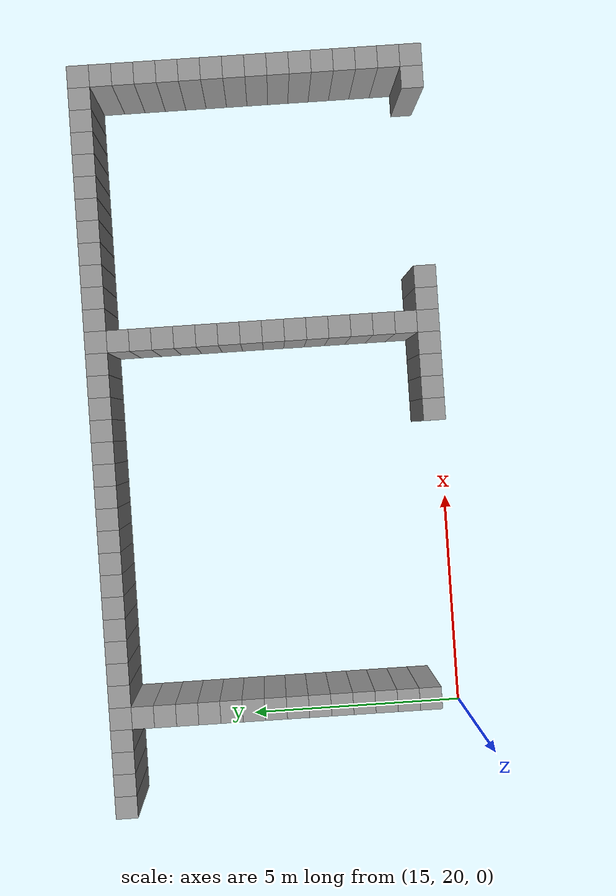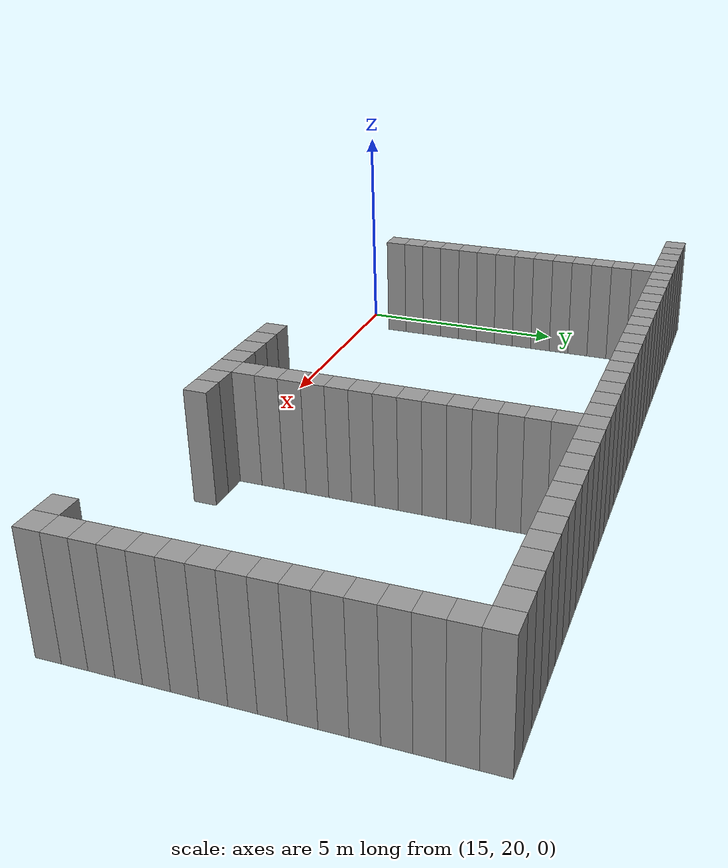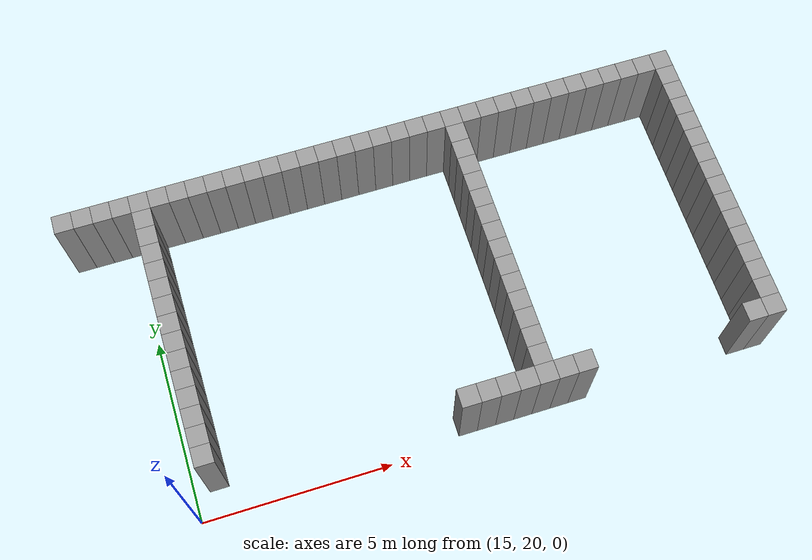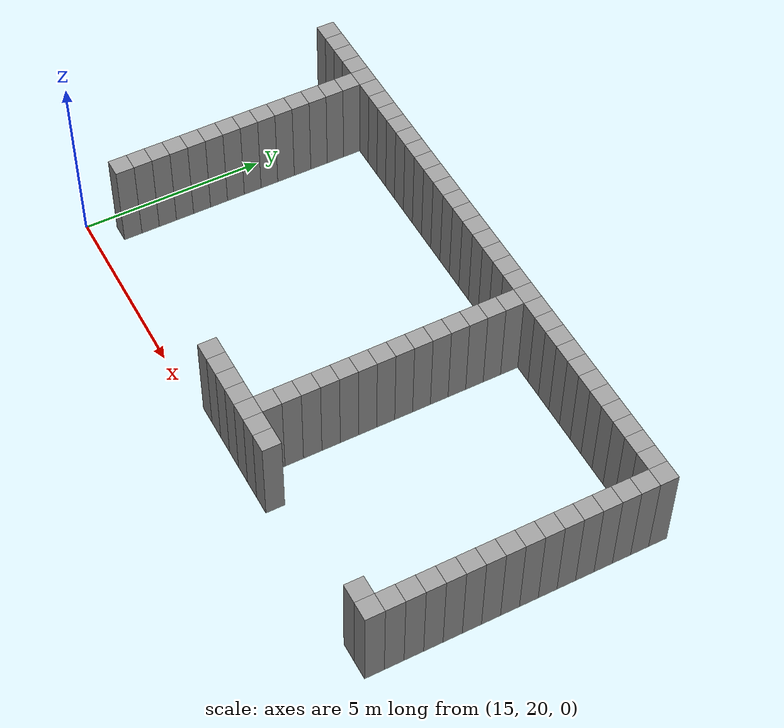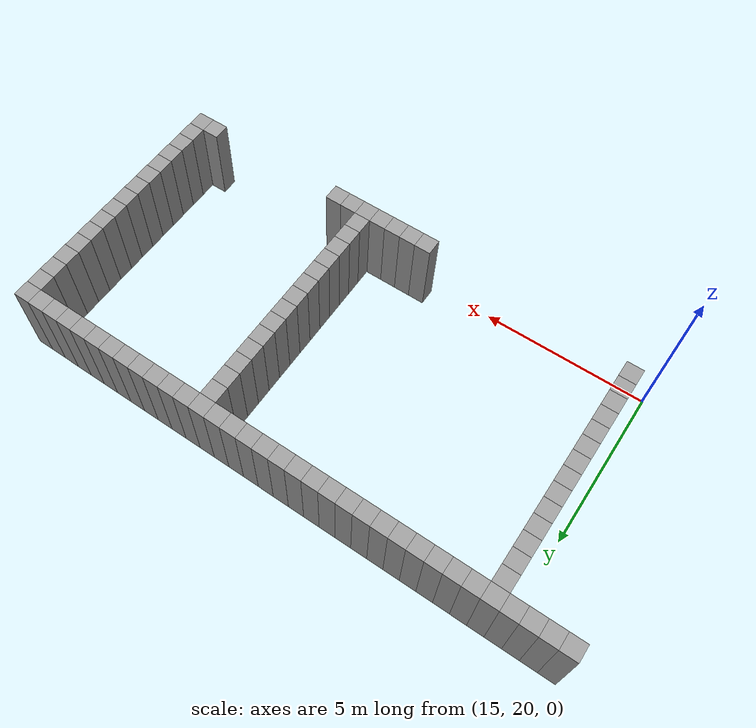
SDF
<sdf version="1.7">
 <model name="image1">
  <pose>-0.375 -1.54 0 0 -0 0</pose>
  <link name="Wall_255">
   <collision name="Wall_255_Collision">
    <geometry><box><size>0.5 0.5 2.5</size></box></geometry>
    <pose>0 0 1.25 0 -0 0</pose>
   </collision>
   <visual name="Wall_255_Visual">
    <pose>0 0 1.25 0 -0 0</pose>
    <geometry><box><size>0.5 0.5 2.5</size></box></geometry>
    <material>
     <script><uri>file://media/materials/scripts/gazebo.material</uri><name>Gazebo/Grey</name></script>
     <ambient>1 1 1 1</ambient>
    </material>
    <meta><layer>0</layer></meta>
   </visual>
   <pose>14.0 29.5 0 0 -0 0</pose>
  </link>
  <link name="Wall_258">
   <collision name="Wall_258_Collision">
    <geometry><box><size>0.5 0.5 2.5</size></box></geometry>
    <pose>0 0 1.25 0 -0 0</pose>
   </collision>
   <visual name="Wall_258_Visual">
    <pose>0 0 1.25 0 -0 0</pose>
    <geometry><box><size>0.5 0.5 2.5</size></box></geometry>
    <material>
     <script><uri>file://media/materials/scripts/gazebo.material</uri><name>Gazebo/Grey</name></script>
     <ambient>1 1 1 1</ambient>
    </material>
    <meta><layer>0</layer></meta>
   </visual>
   <pose>14.5 29.5 0 0 -0 0</pose>
  </link>
  <link name="Wall_261">
   <collision name="Wall_261_Collision">
    <geometry><box><size>0.5 0.5 2.5</size></box></geometry>
    <pose>0 0 1.25 0 -0 0</pose>
   </collision>
   <visual name="Wall_261_Visual">
    <pose>0 0 1.25 0 -0 0</pose>
    <geometry><box><size>0.5 0.5 2.5</size></box></geometry>
    <material>
     <script><uri>file://media/materials/scripts/gazebo.material</uri><name>Gazebo/Grey</name></script>
     <ambient>1 1 1 1</ambient>
    </material>
    <meta><layer>0</layer></meta>
   </visual>
   <pose>15.0 29.5 0 0 -0 0</pose>
  </link>
  <link name="Wall_264">
   <collision name="Wall_264_Collision">
    <geometry><box><size>0.5 0.5 2.5</size></box></geometry>
    <pose>0 0 1.25 0 -0 0</pose>
   </collision>
   <visual name="Wall_264_Visual">
    <pose>0 0 1.25 0 -0 0</pose>
    <geometry><box><size>0.5 0.5 2.5</size></box></geometry>
    <material>
     <script><uri>file://media/materials/scripts/gazebo.material</uri><name>Gazebo/Grey</name></script>
     <ambient>1 1 1 1</ambient>
    </material>
    <meta><layer>0</layer></meta>
   </visual>
   <pose>15.5 29.5 0 0 -0 0</pose>
  </link>
  <link name="Wall_268">
   <collision name="Wall_268_Collision">
    <geometry><box><size>0.5 0.5 2.5</size></box></geometry>
    <pose>0 0 1.25 0 -0 0</pose>
   </collision>
   <visual name="Wall_268_Visual">
    <pose>0 0 1.25 0 -0 0</pose>
    <geometry><box><size>0.5 0.5 2.5</size></box></geometry>
    <material>
     <script><uri>file://media/materials/scripts/gazebo.material</uri><name>Gazebo/Grey</name></script>
     <ambient>1 1 1 1</ambient>
    </material>
    <meta><layer>0</layer></meta>
   </visual>
   <pose>16.0 22.5 0 0 -0 0</pose>
  </link>
  <link name="Wall_269">
   <collision name="Wall_269_Collision">
    <geometry><box><size>0.5 0.5 2.5</size></box></geometry>
    <pose>0 0 1.25 0 -0 0</pose>
   </collision>
   <visual name="Wall_269_Visual">
    <pose>0 0 1.25 0 -0 0</pose>
    <geometry><box><size>0.5 0.5 2.5</size></box></geometry>
    <material>
     <script><uri>file://media/materials/scripts/gazebo.material</uri><name>Gazebo/Grey</name></script>
     <ambient>1 1 1 1</ambient>
    </material>
    <meta><layer>0</layer></meta>
   </visual>
   <pose>16.0 23.0 0 0 -0 0</pose>
  </link>
  <link name="Wall_270">
   <collision name="Wall_270_Collision">
    <geometry><box><size>0.5 0.5 2.5</size></box></geometry>
    <pose>0 0 1.25 0 -0 0</pose>
   </collision>
   <visual name="Wall_270_Visual">
    <pose>0 0 1.25 0 -0 0</pose>
    <geometry><box><size>0.5 0.5 2.5</size></box></geometry>
    <material>
     <script><uri>file://media/materials/scripts/gazebo.material</uri><name>Gazebo/Grey</name></script>
     <ambient>1 1 1 1</ambient>
    </material>
    <meta><layer>0</layer></meta>
   </visual>
   <pose>16.0 23.5 0 0 -0 0</pose>
  </link>
  <link name="Wall_271">
   <collision name="Wall_271_Collision">
    <geometry><box><size>0.5 0.5 2.5</size></box></geometry>
    <pose>0 0 1.25 0 -0 0</pose>
   </collision>
   <visual name="Wall_271_Visual">
    <pose>0 0 1.25 0 -0 0</pose>
    <geometry><box><size>0.5 0.5 2.5</size></box></geometry>
    <material>
     <script><uri>file://media/materials/scripts/gazebo.material</uri><name>Gazebo/Grey</name></script>
     <ambient>1 1 1 1</ambient>
    </material>
    <meta><layer>0</layer></meta>
   </visual>
   <pose>16.0 24.0 0 0 -0 0</pose>
  </link>
  <link name="Wall_272">
   <collision name="Wall_272_Collision">
    <geometry><box><size>0.5 0.5 2.5</size></box></geometry>
    <pose>0 0 1.25 0 -0 0</pose>
   </collision>
   <visual name="Wall_272_Visual">
    <pose>0 0 1.25 0 -0 0</pose>
    <geometry><box><size>0.5 0.5 2.5</size></box></geometry>
    <material>
     <script><uri>file://media/materials/scripts/gazebo.material</uri><name>Gazebo/Grey</name></script>
     <ambient>1 1 1 1</ambient>
    </material>
    <meta><layer>0</layer></meta>
   </visual>
   <pose>16.0 24.5 0 0 -0 0</pose>
  </link>
  <link name="Wall_273">
   <collision name="Wall_273_Collision">
    <geometry><box><size>0.5 0.5 2.5</size></box></geometry>
    <pose>0 0 1.25 0 -0 0</pose>
   </collision>
   <visual name="Wall_273_Visual">
    <pose>0 0 1.25 0 -0 0</pose>
    <geometry><box><size>0.5 0.5 2.5</size></box></geometry>
    <material>
     <script><uri>file://media/materials/scripts/gazebo.material</uri><name>Gazebo/Grey</name></script>
     <ambient>1 1 1 1</ambient>
    </material>
    <meta><layer>0</layer></meta>
   </visual>
   <pose>16.0 25.0 0 0 -0 0</pose>
  </link>
  <link name="Wall_274">
   <collision name="Wall_274_Collision">
    <geometry><box><size>0.5 0.5 2.5</size></box></geometry>
    <pose>0 0 1.25 0 -0 0</pose>
   </collision>
   <visual name="Wall_274_Visual">
    <pose>0 0 1.25 0 -0 0</pose>
    <geometry><box><size>0.5 0.5 2.5</size></box></geometry>
    <material>
     <script><uri>file://media/materials/scripts/gazebo.material</uri><name>Gazebo/Grey</name></script>
     <ambient>1 1 1 1</ambient>
    </material>
    <meta><layer>0</layer></meta>
   </visual>
   <pose>16.0 25.5 0 0 -0 0</pose>
  </link>
  <link name="Wall_275">
   <collision name="Wall_275_Collision">
    <geometry><box><size>0.5 0.5 2.5</size></box></geometry>
    <pose>0 0 1.25 0 -0 0</pose>
   </collision>
   <visual name="Wall_275_Visual">
    <pose>0 0 1.25 0 -0 0</pose>
    <geometry><box><size>0.5 0.5 2.5</size></box></geometry>
    <material>
     <script><uri>file://media/materials/scripts/gazebo.material</uri><name>Gazebo/Grey</name></script>
     <ambient>1 1 1 1</ambient>
    </material>
    <meta><layer>0</layer></meta>
   </visual>
   <pose>16.0 26.0 0 0 -0 0</pose>
  </link>
  <link name="Wall_276">
   <collision name="Wall_276_Collision">
    <geometry><box><size>0.5 0.5 2.5</size></box></geometry>
    <pose>0 0 1.25 0 -0 0</pose>
   </collision>
   <visual name="Wall_276_Visual">
    <pose>0 0 1.25 0 -0 0</pose>
    <geometry><box><size>0.5 0.5 2.5</size></box></geometry>
    <material>
     <script><uri>file://media/materials/scripts/gazebo.material</uri><name>Gazebo/Grey</name></script>
     <ambient>1 1 1 1</ambient>
    </material>
    <meta><layer>0</layer></meta>
   </visual>
   <pose>16.0 26.5 0 0 -0 0</pose>
  </link>
  <link name="Wall_277">
   <collision name="Wall_277_Collision">
    <geometry><box><size>0.5 0.5 2.5</size></box></geometry>
    <pose>0 0 1.25 0 -0 0</pose>
   </collision>
   <visual name="Wall_277_Visual">
    <pose>0 0 1.25 0 -0 0</pose>
    <geometry><box><size>0.5 0.5 2.5</size></box></geometry>
    <material>
     <script><uri>file://media/materials/scripts/gazebo.material</uri><name>Gazebo/Grey</name></script>
     <ambient>1 1 1 1</ambient>
    </material>
    <meta><layer>0</layer></meta>
   </visual>
   <pose>16.0 27.0 0 0 -0 0</pose>
  </link>
  <link name="Wall_278">
   <collision name="Wall_278_Collision">
    <geometry><box><size>0.5 0.5 2.5</size></box></geometry>
    <pose>0 0 1.25 0 -0 0</pose>
   </collision>
   <visual name="Wall_278_Visual">
    <pose>0 0 1.25 0 -0 0</pose>
    <geometry><box><size>0.5 0.5 2.5</size></box></geometry>
    <material>
     <script><uri>file://media/materials/scripts/gazebo.material</uri><name>Gazebo/Grey</name></script>
     <ambient>1 1 1 1</ambient>
    </material>
    <meta><layer>0</layer></meta>
   </visual>
   <pose>16.0 27.5 0 0 -0 0</pose>
  </link>
  <link name="Wall_279">
   <collision name="Wall_279_Collision">
    <geometry><box><size>0.5 0.5 2.5</size></box></geometry>
    <pose>0 0 1.25 0 -0 0</pose>
   </collision>
   <visual name="Wall_279_Visual">
    <pose>0 0 1.25 0 -0 0</pose>
    <geometry><box><size>0.5 0.5 2.5</size></box></geometry>
    <material>
     <script><uri>file://media/materials/scripts/gazebo.material</uri><name>Gazebo/Grey</name></script>
     <ambient>1 1 1 1</ambient>
    </material>
    <meta><layer>0</layer></meta>
   </visual>
   <pose>16.0 28.0 0 0 -0 0</pose>
  </link>
  <link name="Wall_280">
   <collision name="Wall_280_Collision">
    <geometry><box><size>0.5 0.5 2.5</size></box></geometry>
    <pose>0 0 1.25 0 -0 0</pose>
   </collision>
   <visual name="Wall_280_Visual">
    <pose>0 0 1.25 0 -0 0</pose>
    <geometry><box><size>0.5 0.5 2.5</size></box></geometry>
    <material>
     <script><uri>file://media/materials/scripts/gazebo.material</uri><name>Gazebo/Grey</name></script>
     <ambient>1 1 1 1</ambient>
    </material>
    <meta><layer>0</layer></meta>
   </visual>
   <pose>16.0 28.5 0 0 -0 0</pose>
  </link>
  <link name="Wall_281">
   <collision name="Wall_281_Collision">
    <geometry><box><size>0.5 0.5 2.5</size></box></geometry>
    <pose>0 0 1.25 0 -0 0</pose>
   </collision>
   <visual name="Wall_281_Visual">
    <pose>0 0 1.25 0 -0 0</pose>
    <geometry><box><size>0.5 0.5 2.5</size></box></geometry>
    <material>
     <script><uri>file://media/materials/scripts/gazebo.material</uri><name>Gazebo/Grey</name></script>
     <ambient>1 1 1 1</ambient>
    </material>
    <meta><layer>0</layer></meta>
   </visual>
   <pose>16.0 29.0 0 0 -0 0</pose>
  </link>
  <link name="Wall_282">
   <collision name="Wall_282_Collision">
    <geometry><box><size>0.5 0.5 2.5</size></box></geometry>
    <pose>0 0 1.25 0 -0 0</pose>
   </collision>
   <visual name="Wall_282_Visual">
    <pose>0 0 1.25 0 -0 0</pose>
    <geometry><box><size>0.5 0.5 2.5</size></box></geometry>
    <material>
     <script><uri>file://media/materials/scripts/gazebo.material</uri><name>Gazebo/Grey</name></script>
     <ambient>1 1 1 1</ambient>
    </material>
    <meta><layer>0</layer></meta>
   </visual>
   <pose>16.0 29.5 0 0 -0 0</pose>
  </link>
  <link name="Wall_286">
   <collision name="Wall_286_Collision">
    <geometry><box><size>0.5 0.5 2.5</size></box></geometry>
    <pose>0 0 1.25 0 -0 0</pose>
   </collision>
   <visual name="Wall_286_Visual">
    <pose>0 0 1.25 0 -0 0</pose>
    <geometry><box><size>0.5 0.5 2.5</size></box></geometry>
    <material>
     <script><uri>file://media/materials/scripts/gazebo.material</uri><name>Gazebo/Grey</name></script>
     <ambient>1 1 1 1</ambient>
    </material>
    <meta><layer>0</layer></meta>
   </visual>
   <pose>16.5 29.5 0 0 -0 0</pose>
  </link>
  <link name="Wall_290">
   <collision name="Wall_290_Collision">
    <geometry><box><size>0.5 0.5 2.5</size></box></geometry>
    <pose>0 0 1.25 0 -0 0</pose>
   </collision>
   <visual name="Wall_290_Visual">
    <pose>0 0 1.25 0 -0 0</pose>
    <geometry><box><size>0.5 0.5 2.5</size></box></geometry>
    <material>
     <script><uri>file://media/materials/scripts/gazebo.material</uri><name>Gazebo/Grey</name></script>
     <ambient>1 1 1 1</ambient>
    </material>
    <meta><layer>0</layer></meta>
   </visual>
   <pose>17.0 29.5 0 0 -0 0</pose>
  </link>
  <link name="Wall_294">
   <collision name="Wall_294_Collision">
    <geometry><box><size>0.5 0.5 2.5</size></box></geometry>
    <pose>0 0 1.25 0 -0 0</pose>
   </collision>
   <visual name="Wall_294_Visual">
    <pose>0 0 1.25 0 -0 0</pose>
    <geometry><box><size>0.5 0.5 2.5</size></box></geometry>
    <material>
     <script><uri>file://media/materials/scripts/gazebo.material</uri><name>Gazebo/Grey</name></script>
     <ambient>1 1 1 1</ambient>
    </material>
    <meta><layer>0</layer></meta>
   </visual>
   <pose>17.5 29.5 0 0 -0 0</pose>
  </link>
  <link name="Wall_298">
   <collision name="Wall_298_Collision">
    <geometry><box><size>0.5 0.5 2.5</size></box></geometry>
    <pose>0 0 1.25 0 -0 0</pose>
   </collision>
   <visual name="Wall_298_Visual">
    <pose>0 0 1.25 0 -0 0</pose>
    <geometry><box><size>0.5 0.5 2.5</size></box></geometry>
    <material>
     <script><uri>file://media/materials/scripts/gazebo.material</uri><name>Gazebo/Grey</name></script>
     <ambient>1 1 1 1</ambient>
    </material>
    <meta><layer>0</layer></meta>
   </visual>
   <pose>18.0 29.5 0 0 -0 0</pose>
  </link>
  <link name="Wall_320">
   <collision name="Wall_320_Collision">
    <geometry><box><size>0.5 0.5 2.5</size></box></geometry>
    <pose>0 0 1.25 0 -0 0</pose>
   </collision>
   <visual name="Wall_320_Visual">
    <pose>0 0 1.25 0 -0 0</pose>
    <geometry><box><size>0.5 0.5 2.5</size></box></geometry>
    <material>
     <script><uri>file://media/materials/scripts/gazebo.material</uri><name>Gazebo/Grey</name></script>
     <ambient>1 1 1 1</ambient>
    </material>
    <meta><layer>0</layer></meta>
   </visual>
   <pose>18.5 29.5 0 0 -0 0</pose>
  </link>
  <link name="Wall_325">
   <collision name="Wall_325_Collision">
    <geometry><box><size>0.5 0.5 2.5</size></box></geometry>
    <pose>0 0 1.25 0 -0 0</pose>
   </collision>
   <visual name="Wall_325_Visual">
    <pose>0 0 1.25 0 -0 0</pose>
    <geometry><box><size>0.5 0.5 2.5</size></box></geometry>
    <material>
     <script><uri>file://media/materials/scripts/gazebo.material</uri><name>Gazebo/Grey</name></script>
     <ambient>1 1 1 1</ambient>
    </material>
    <meta><layer>0</layer></meta>
   </visual>
   <pose>19.0 29.5 0 0 -0 0</pose>
  </link>
  <link name="Wall_340">
   <collision name="Wall_340_Collision">
    <geometry><box><size>0.5 0.5 2.5</size></box></geometry>
    <pose>0 0 1.25 0 -0 0</pose>
   </collision>
   <visual name="Wall_340_Visual">
    <pose>0 0 1.25 0 -0 0</pose>
    <geometry><box><size>0.5 0.5 2.5</size></box></geometry>
    <material>
     <script><uri>file://media/materials/scripts/gazebo.material</uri><name>Gazebo/Grey</name></script>
     <ambient>1 1 1 1</ambient>
    </material>
    <meta><layer>0</layer></meta>
   </visual>
   <pose>19.5 29.5 0 0 -0 0</pose>
  </link>
  <link name="Wall_343">
   <collision name="Wall_343_Collision">
    <geometry><box><size>0.5 0.5 2.5</size></box></geometry>
    <pose>0 0 1.25 0 -0 0</pose>
   </collision>
   <visual name="Wall_343_Visual">
    <pose>0 0 1.25 0 -0 0</pose>
    <geometry><box><size>0.5 0.5 2.5</size></box></geometry>
    <material>
     <script><uri>file://media/materials/scripts/gazebo.material</uri><name>Gazebo/Grey</name></script>
     <ambient>1 1 1 1</ambient>
    </material>
    <meta><layer>0</layer></meta>
   </visual>
   <pose>20.0 29.5 0 0 -0 0</pose>
  </link>
  <link name="Wall_346">
   <collision name="Wall_346_Collision">
    <geometry><box><size>0.5 0.5 2.5</size></box></geometry>
    <pose>0 0 1.25 0 -0 0</pose>
   </collision>
   <visual name="Wall_346_Visual">
    <pose>0 0 1.25 0 -0 0</pose>
    <geometry><box><size>0.5 0.5 2.5</size></box></geometry>
    <material>
     <script><uri>file://media/materials/scripts/gazebo.material</uri><name>Gazebo/Grey</name></script>
     <ambient>1 1 1 1</ambient>
    </material>
    <meta><layer>0</layer></meta>
   </visual>
   <pose>20.5 29.5 0 0 -0 0</pose>
  </link>
  <link name="Wall_349">
   <collision name="Wall_349_Collision">
    <geometry><box><size>0.5 0.5 2.5</size></box></geometry>
    <pose>0 0 1.25 0 -0 0</pose>
   </collision>
   <visual name="Wall_349_Visual">
    <pose>0 0 1.25 0 -0 0</pose>
    <geometry><box><size>0.5 0.5 2.5</size></box></geometry>
    <material>
     <script><uri>file://media/materials/scripts/gazebo.material</uri><name>Gazebo/Grey</name></script>
     <ambient>1 1 1 1</ambient>
    </material>
    <meta><layer>0</layer></meta>
   </visual>
   <pose>21.0 29.5 0 0 -0 0</pose>
  </link>
  <link name="Wall_351">
   <collision name="Wall_351_Collision">
    <geometry><box><size>0.5 0.5 2.5</size></box></geometry>
    <pose>0 0 1.25 0 -0 0</pose>
   </collision>
   <visual name="Wall_351_Visual">
    <pose>0 0 1.25 0 -0 0</pose>
    <geometry><box><size>0.5 0.5 2.5</size></box></geometry>
    <material>
     <script><uri>file://media/materials/scripts/gazebo.material</uri><name>Gazebo/Grey</name></script>
     <ambient>1 1 1 1</ambient>
    </material>
    <meta><layer>0</layer></meta>
   </visual>
   <pose>21.5 29.5 0 0 -0 0</pose>
  </link>
  <link name="Wall_353">
   <collision name="Wall_353_Collision">
    <geometry><box><size>0.5 0.5 2.5</size></box></geometry>
    <pose>0 0 1.25 0 -0 0</pose>
   </collision>
   <visual name="Wall_353_Visual">
    <pose>0 0 1.25 0 -0 0</pose>
    <geometry><box><size>0.5 0.5 2.5</size></box></geometry>
    <material>
     <script><uri>file://media/materials/scripts/gazebo.material</uri><name>Gazebo/Grey</name></script>
     <ambient>1 1 1 1</ambient>
    </material>
    <meta><layer>0</layer></meta>
   </visual>
   <pose>22.0 29.5 0 0 -0 0</pose>
  </link>
  <link name="Wall_355">
   <collision name="Wall_355_Collision">
    <geometry><box><size>0.5 0.5 2.5</size></box></geometry>
    <pose>0 0 1.25 0 -0 0</pose>
   </collision>
   <visual name="Wall_355_Visual">
    <pose>0 0 1.25 0 -0 0</pose>
    <geometry><box><size>0.5 0.5 2.5</size></box></geometry>
    <material>
     <script><uri>file://media/materials/scripts/gazebo.material</uri><name>Gazebo/Grey</name></script>
     <ambient>1 1 1 1</ambient>
    </material>
    <meta><layer>0</layer></meta>
   </visual>
   <pose>22.5 22.0 0 0 -0 0</pose>
  </link>
  <link name="Wall_356">
   <collision name="Wall_356_Collision">
    <geometry><box><size>0.5 0.5 2.5</size></box></geometry>
    <pose>0 0 1.25 0 -0 0</pose>
   </collision>
   <visual name="Wall_356_Visual">
    <pose>0 0 1.25 0 -0 0</pose>
    <geometry><box><size>0.5 0.5 2.5</size></box></geometry>
    <material>
     <script><uri>file://media/materials/scripts/gazebo.material</uri><name>Gazebo/Grey</name></script>
     <ambient>1 1 1 1</ambient>
    </material>
    <meta><layer>0</layer></meta>
   </visual>
   <pose>22.5 29.5 0 0 -0 0</pose>
  </link>
  <link name="Wall_358">
   <collision name="Wall_358_Collision">
    <geometry><box><size>0.5 0.5 2.5</size></box></geometry>
    <pose>0 0 1.25 0 -0 0</pose>
   </collision>
   <visual name="Wall_358_Visual">
    <pose>0 0 1.25 0 -0 0</pose>
    <geometry><box><size>0.5 0.5 2.5</size></box></geometry>
    <material>
     <script><uri>file://media/materials/scripts/gazebo.material</uri><name>Gazebo/Grey</name></script>
     <ambient>1 1 1 1</ambient>
    </material>
    <meta><layer>0</layer></meta>
   </visual>
   <pose>23.0 22.0 0 0 -0 0</pose>
  </link>
  <link name="Wall_359">
   <collision name="Wall_359_Collision">
    <geometry><box><size>0.5 0.5 2.5</size></box></geometry>
    <pose>0 0 1.25 0 -0 0</pose>
   </collision>
   <visual name="Wall_359_Visual">
    <pose>0 0 1.25 0 -0 0</pose>
    <geometry><box><size>0.5 0.5 2.5</size></box></geometry>
    <material>
     <script><uri>file://media/materials/scripts/gazebo.material</uri><name>Gazebo/Grey</name></script>
     <ambient>1 1 1 1</ambient>
    </material>
    <meta><layer>0</layer></meta>
   </visual>
   <pose>23.0 29.5 0 0 -0 0</pose>
  </link>
  <link name="Wall_361">
   <collision name="Wall_361_Collision">
    <geometry><box><size>0.5 0.5 2.5</size></box></geometry>
    <pose>0 0 1.25 0 -0 0</pose>
   </collision>
   <visual name="Wall_361_Visual">
    <pose>0 0 1.25 0 -0 0</pose>
    <geometry><box><size>0.5 0.5 2.5</size></box></geometry>
    <material>
     <script><uri>file://media/materials/scripts/gazebo.material</uri><name>Gazebo/Grey</name></script>
     <ambient>1 1 1 1</ambient>
    </material>
    <meta><layer>0</layer></meta>
   </visual>
   <pose>23.5 22.0 0 0 -0 0</pose>
  </link>
  <link name="Wall_362">
   <collision name="Wall_362_Collision">
    <geometry><box><size>0.5 0.5 2.5</size></box></geometry>
    <pose>0 0 1.25 0 -0 0</pose>
   </collision>
   <visual name="Wall_362_Visual">
    <pose>0 0 1.25 0 -0 0</pose>
    <geometry><box><size>0.5 0.5 2.5</size></box></geometry>
    <material>
     <script><uri>file://media/materials/scripts/gazebo.material</uri><name>Gazebo/Grey</name></script>
     <ambient>1 1 1 1</ambient>
    </material>
    <meta><layer>0</layer></meta>
   </visual>
   <pose>23.5 29.5 0 0 -0 0</pose>
  </link>
  <link name="Wall_368">
   <collision name="Wall_368_Collision">
    <geometry><box><size>0.5 0.5 2.5</size></box></geometry>
    <pose>0 0 1.25 0 -0 0</pose>
   </collision>
   <visual name="Wall_368_Visual">
    <pose>0 0 1.25 0 -0 0</pose>
    <geometry><box><size>0.5 0.5 2.5</size></box></geometry>
    <material>
     <script><uri>file://media/materials/scripts/gazebo.material</uri><name>Gazebo/Grey</name></script>
     <ambient>1 1 1 1</ambient>
    </material>
    <meta><layer>0</layer></meta>
   </visual>
   <pose>24.0 22.0 0 0 -0 0</pose>
  </link>
  <link name="Wall_369">
   <collision name="Wall_369_Collision">
    <geometry><box><size>0.5 0.5 2.5</size></box></geometry>
    <pose>0 0 1.25 0 -0 0</pose>
   </collision>
   <visual name="Wall_369_Visual">
    <pose>0 0 1.25 0 -0 0</pose>
    <geometry><box><size>0.5 0.5 2.5</size></box></geometry>
    <material>
     <script><uri>file://media/materials/scripts/gazebo.material</uri><name>Gazebo/Grey</name></script>
     <ambient>1 1 1 1</ambient>
    </material>
    <meta><layer>0</layer></meta>
   </visual>
   <pose>24.0 29.5 0 0 -0 0</pose>
  </link>
  <link name="Wall_374">
   <collision name="Wall_374_Collision">
    <geometry><box><size>0.5 0.5 2.5</size></box></geometry>
    <pose>0 0 1.25 0 -0 0</pose>
   </collision>
   <visual name="Wall_374_Visual">
    <pose>0 0 1.25 0 -0 0</pose>
    <geometry><box><size>0.5 0.5 2.5</size></box></geometry>
    <material>
     <script><uri>file://media/materials/scripts/gazebo.material</uri><name>Gazebo/Grey</name></script>
     <ambient>1 1 1 1</ambient>
    </material>
    <meta><layer>0</layer></meta>
   </visual>
   <pose>24.5 22.0 0 0 -0 0</pose>
  </link>
  <link name="Wall_375">
   <collision name="Wall_375_Collision">
    <geometry><box><size>0.5 0.5 2.5</size></box></geometry>
    <pose>0 0 1.25 0 -0 0</pose>
   </collision>
   <visual name="Wall_375_Visual">
    <pose>0 0 1.25 0 -0 0</pose>
    <geometry><box><size>0.5 0.5 2.5</size></box></geometry>
    <material>
     <script><uri>file://media/materials/scripts/gazebo.material</uri><name>Gazebo/Grey</name></script>
     <ambient>1 1 1 1</ambient>
    </material>
    <meta><layer>0</layer></meta>
   </visual>
   <pose>24.5 22.5 0 0 -0 0</pose>
  </link>
  <link name="Wall_376">
   <collision name="Wall_376_Collision">
    <geometry><box><size>0.5 0.5 2.5</size></box></geometry>
    <pose>0 0 1.25 0 -0 0</pose>
   </collision>
   <visual name="Wall_376_Visual">
    <pose>0 0 1.25 0 -0 0</pose>
    <geometry><box><size>0.5 0.5 2.5</size></box></geometry>
    <material>
     <script><uri>file://media/materials/scripts/gazebo.material</uri><name>Gazebo/Grey</name></script>
     <ambient>1 1 1 1</ambient>
    </material>
    <meta><layer>0</layer></meta>
   </visual>
   <pose>24.5 23.0 0 0 -0 0</pose>
  </link>
  <link name="Wall_377">
   <collision name="Wall_377_Collision">
    <geometry><box><size>0.5 0.5 2.5</size></box></geometry>
    <pose>0 0 1.25 0 -0 0</pose>
   </collision>
   <visual name="Wall_377_Visual">
    <pose>0 0 1.25 0 -0 0</pose>
    <geometry><box><size>0.5 0.5 2.5</size></box></geometry>
    <material>
     <script><uri>file://media/materials/scripts/gazebo.material</uri><name>Gazebo/Grey</name></script>
     <ambient>1 1 1 1</ambient>
    </material>
    <meta><layer>0</layer></meta>
   </visual>
   <pose>24.5 23.5 0 0 -0 0</pose>
  </link>
  <link name="Wall_378">
   <collision name="Wall_378_Collision">
    <geometry><box><size>0.5 0.5 2.5</size></box></geometry>
    <pose>0 0 1.25 0 -0 0</pose>
   </collision>
   <visual name="Wall_378_Visual">
    <pose>0 0 1.25 0 -0 0</pose>
    <geometry><box><size>0.5 0.5 2.5</size></box></geometry>
    <material>
     <script><uri>file://media/materials/scripts/gazebo.material</uri><name>Gazebo/Grey</name></script>
     <ambient>1 1 1 1</ambient>
    </material>
    <meta><layer>0</layer></meta>
   </visual>
   <pose>24.5 24.0 0 0 -0 0</pose>
  </link>
  <link name="Wall_379">
   <collision name="Wall_379_Collision">
    <geometry><box><size>0.5 0.5 2.5</size></box></geometry>
    <pose>0 0 1.25 0 -0 0</pose>
   </collision>
   <visual name="Wall_379_Visual">
    <pose>0 0 1.25 0 -0 0</pose>
    <geometry><box><size>0.5 0.5 2.5</size></box></geometry>
    <material>
     <script><uri>file://media/materials/scripts/gazebo.material</uri><name>Gazebo/Grey</name></script>
     <ambient>1 1 1 1</ambient>
    </material>
    <meta><layer>0</layer></meta>
   </visual>
   <pose>24.5 24.5 0 0 -0 0</pose>
  </link>
  <link name="Wall_380">
   <collision name="Wall_380_Collision">
    <geometry><box><size>0.5 0.5 2.5</size></box></geometry>
    <pose>0 0 1.25 0 -0 0</pose>
   </collision>
   <visual name="Wall_380_Visual">
    <pose>0 0 1.25 0 -0 0</pose>
    <geometry><box><size>0.5 0.5 2.5</size></box></geometry>
    <material>
     <script><uri>file://media/materials/scripts/gazebo.material</uri><name>Gazebo/Grey</name></script>
     <ambient>1 1 1 1</ambient>
    </material>
    <meta><layer>0</layer></meta>
   </visual>
   <pose>24.5 25.0 0 0 -0 0</pose>
  </link>
  <link name="Wall_381">
   <collision name="Wall_381_Collision">
    <geometry><box><size>0.5 0.5 2.5</size></box></geometry>
    <pose>0 0 1.25 0 -0 0</pose>
   </collision>
   <visual name="Wall_381_Visual">
    <pose>0 0 1.25 0 -0 0</pose>
    <geometry><box><size>0.5 0.5 2.5</size></box></geometry>
    <material>
     <script><uri>file://media/materials/scripts/gazebo.material</uri><name>Gazebo/Grey</name></script>
     <ambient>1 1 1 1</ambient>
    </material>
    <meta><layer>0</layer></meta>
   </visual>
   <pose>24.5 25.5 0 0 -0 0</pose>
  </link>
  <link name="Wall_382">
   <collision name="Wall_382_Collision">
    <geometry><box><size>0.5 0.5 2.5</size></box></geometry>
    <pose>0 0 1.25 0 -0 0</pose>
   </collision>
   <visual name="Wall_382_Visual">
    <pose>0 0 1.25 0 -0 0</pose>
    <geometry><box><size>0.5 0.5 2.5</size></box></geometry>
    <material>
     <script><uri>file://media/materials/scripts/gazebo.material</uri><name>Gazebo/Grey</name></script>
     <ambient>1 1 1 1</ambient>
    </material>
    <meta><layer>0</layer></meta>
   </visual>
   <pose>24.5 26.0 0 0 -0 0</pose>
  </link>
  <link name="Wall_383">
   <collision name="Wall_383_Collision">
    <geometry><box><size>0.5 0.5 2.5</size></box></geometry>
    <pose>0 0 1.25 0 -0 0</pose>
   </collision>
   <visual name="Wall_383_Visual">
    <pose>0 0 1.25 0 -0 0</pose>
    <geometry><box><size>0.5 0.5 2.5</size></box></geometry>
    <material>
     <script><uri>file://media/materials/scripts/gazebo.material</uri><name>Gazebo/Grey</name></script>
     <ambient>1 1 1 1</ambient>
    </material>
    <meta><layer>0</layer></meta>
   </visual>
   <pose>24.5 26.5 0 0 -0 0</pose>
  </link>
  <link name="Wall_384">
   <collision name="Wall_384_Collision">
    <geometry><box><size>0.5 0.5 2.5</size></box></geometry>
    <pose>0 0 1.25 0 -0 0</pose>
   </collision>
   <visual name="Wall_384_Visual">
    <pose>0 0 1.25 0 -0 0</pose>
    <geometry><box><size>0.5 0.5 2.5</size></box></geometry>
    <material>
     <script><uri>file://media/materials/scripts/gazebo.material</uri><name>Gazebo/Grey</name></script>
     <ambient>1 1 1 1</ambient>
    </material>
    <meta><layer>0</layer></meta>
   </visual>
   <pose>24.5 27.0 0 0 -0 0</pose>
  </link>
  <link name="Wall_385">
   <collision name="Wall_385_Collision">
    <geometry><box><size>0.5 0.5 2.5</size></box></geometry>
    <pose>0 0 1.25 0 -0 0</pose>
   </collision>
   <visual name="Wall_385_Visual">
    <pose>0 0 1.25 0 -0 0</pose>
    <geometry><box><size>0.5 0.5 2.5</size></box></geometry>
    <material>
     <script><uri>file://media/materials/scripts/gazebo.material</uri><name>Gazebo/Grey</name></script>
     <ambient>1 1 1 1</ambient>
    </material>
    <meta><layer>0</layer></meta>
   </visual>
   <pose>24.5 27.5 0 0 -0 0</pose>
  </link>
  <link name="Wall_386">
   <collision name="Wall_386_Collision">
    <geometry><box><size>0.5 0.5 2.5</size></box></geometry>
    <pose>0 0 1.25 0 -0 0</pose>
   </collision>
   <visual name="Wall_386_Visual">
    <pose>0 0 1.25 0 -0 0</pose>
    <geometry><box><size>0.5 0.5 2.5</size></box></geometry>
    <material>
     <script><uri>file://media/materials/scripts/gazebo.material</uri><name>Gazebo/Grey</name></script>
     <ambient>1 1 1 1</ambient>
    </material>
    <meta><layer>0</layer></meta>
   </visual>
   <pose>24.5 28.0 0 0 -0 0</pose>
  </link>
  <link name="Wall_387">
   <collision name="Wall_387_Collision">
    <geometry><box><size>0.5 0.5 2.5</size></box></geometry>
    <pose>0 0 1.25 0 -0 0</pose>
   </collision>
   <visual name="Wall_387_Visual">
    <pose>0 0 1.25 0 -0 0</pose>
    <geometry><box><size>0.5 0.5 2.5</size></box></geometry>
    <material>
     <script><uri>file://media/materials/scripts/gazebo.material</uri><name>Gazebo/Grey</name></script>
     <ambient>1 1 1 1</ambient>
    </material>
    <meta><layer>0</layer></meta>
   </visual>
   <pose>24.5 28.5 0 0 -0 0</pose>
  </link>
  <link name="Wall_388">
   <collision name="Wall_388_Collision">
    <geometry><box><size>0.5 0.5 2.5</size></box></geometry>
    <pose>0 0 1.25 0 -0 0</pose>
   </collision>
   <visual name="Wall_388_Visual">
    <pose>0 0 1.25 0 -0 0</pose>
    <geometry><box><size>0.5 0.5 2.5</size></box></geometry>
    <material>
     <script><uri>file://media/materials/scripts/gazebo.material</uri><name>Gazebo/Grey</name></script>
     <ambient>1 1 1 1</ambient>
    </material>
    <meta><layer>0</layer></meta>
   </visual>
   <pose>24.5 29.0 0 0 -0 0</pose>
  </link>
  <link name="Wall_389">
   <collision name="Wall_389_Collision">
    <geometry><box><size>0.5 0.5 2.5</size></box></geometry>
    <pose>0 0 1.25 0 -0 0</pose>
   </collision>
   <visual name="Wall_389_Visual">
    <pose>0 0 1.25 0 -0 0</pose>
    <geometry><box><size>0.5 0.5 2.5</size></box></geometry>
    <material>
     <script><uri>file://media/materials/scripts/gazebo.material</uri><name>Gazebo/Grey</name></script>
     <ambient>1 1 1 1</ambient>
    </material>
    <meta><layer>0</layer></meta>
   </visual>
   <pose>24.5 29.5 0 0 -0 0</pose>
  </link>
  <link name="Wall_394">
   <collision name="Wall_394_Collision">
    <geometry><box><size>0.5 0.5 2.5</size></box></geometry>
    <pose>0 0 1.25 0 -0 0</pose>
   </collision>
   <visual name="Wall_394_Visual">
    <pose>0 0 1.25 0 -0 0</pose>
    <geometry><box><size>0.5 0.5 2.5</size></box></geometry>
    <material>
     <script><uri>file://media/materials/scripts/gazebo.material</uri><name>Gazebo/Grey</name></script>
     <ambient>1 1 1 1</ambient>
    </material>
    <meta><layer>0</layer></meta>
   </visual>
   <pose>25.0 22.0 0 0 -0 0</pose>
  </link>
  <link name="Wall_395">
   <collision name="Wall_395_Collision">
    <geometry><box><size>0.5 0.5 2.5</size></box></geometry>
    <pose>0 0 1.25 0 -0 0</pose>
   </collision>
   <visual name="Wall_395_Visual">
    <pose>0 0 1.25 0 -0 0</pose>
    <geometry><box><size>0.5 0.5 2.5</size></box></geometry>
    <material>
     <script><uri>file://media/materials/scripts/gazebo.material</uri><name>Gazebo/Grey</name></script>
     <ambient>1 1 1 1</ambient>
    </material>
    <meta><layer>0</layer></meta>
   </visual>
   <pose>25.0 29.5 0 0 -0 0</pose>
  </link>
  <link name="Wall_400">
   <collision name="Wall_400_Collision">
    <geometry><box><size>0.5 0.5 2.5</size></box></geometry>
    <pose>0 0 1.25 0 -0 0</pose>
   </collision>
   <visual name="Wall_400_Visual">
    <pose>0 0 1.25 0 -0 0</pose>
    <geometry><box><size>0.5 0.5 2.5</size></box></geometry>
    <material>
     <script><uri>file://media/materials/scripts/gazebo.material</uri><name>Gazebo/Grey</name></script>
     <ambient>1 1 1 1</ambient>
    </material>
    <meta><layer>0</layer></meta>
   </visual>
   <pose>25.5 22.0 0 0 -0 0</pose>
  </link>
  <link name="Wall_401">
   <collision name="Wall_401_Collision">
    <geometry><box><size>0.5 0.5 2.5</size></box></geometry>
    <pose>0 0 1.25 0 -0 0</pose>
   </collision>
   <visual name="Wall_401_Visual">
    <pose>0 0 1.25 0 -0 0</pose>
    <geometry><box><size>0.5 0.5 2.5</size></box></geometry>
    <material>
     <script><uri>file://media/materials/scripts/gazebo.material</uri><name>Gazebo/Grey</name></script>
     <ambient>1 1 1 1</ambient>
    </material>
    <meta><layer>0</layer></meta>
   </visual>
   <pose>25.5 29.5 0 0 -0 0</pose>
  </link>
  <link name="Wall_406">
   <collision name="Wall_406_Collision">
    <geometry><box><size>0.5 0.5 2.5</size></box></geometry>
    <pose>0 0 1.25 0 -0 0</pose>
   </collision>
   <visual name="Wall_406_Visual">
    <pose>0 0 1.25 0 -0 0</pose>
    <geometry><box><size>0.5 0.5 2.5</size></box></geometry>
    <material>
     <script><uri>file://media/materials/scripts/gazebo.material</uri><name>Gazebo/Grey</name></script>
     <ambient>1 1 1 1</ambient>
    </material>
    <meta><layer>0</layer></meta>
   </visual>
   <pose>26.0 29.5 0 0 -0 0</pose>
  </link>
  <link name="Wall_411">
   <collision name="Wall_411_Collision">
    <geometry><box><size>0.5 0.5 2.5</size></box></geometry>
    <pose>0 0 1.25 0 -0 0</pose>
   </collision>
   <visual name="Wall_411_Visual">
    <pose>0 0 1.25 0 -0 0</pose>
    <geometry><box><size>0.5 0.5 2.5</size></box></geometry>
    <material>
     <script><uri>file://media/materials/scripts/gazebo.material</uri><name>Gazebo/Grey</name></script>
     <ambient>1 1 1 1</ambient>
    </material>
    <meta><layer>0</layer></meta>
   </visual>
   <pose>26.5 29.5 0 0 -0 0</pose>
  </link>
  <link name="Wall_416">
   <collision name="Wall_416_Collision">
    <geometry><box><size>0.5 0.5 2.5</size></box></geometry>
    <pose>0 0 1.25 0 -0 0</pose>
   </collision>
   <visual name="Wall_416_Visual">
    <pose>0 0 1.25 0 -0 0</pose>
    <geometry><box><size>0.5 0.5 2.5</size></box></geometry>
    <material>
     <script><uri>file://media/materials/scripts/gazebo.material</uri><name>Gazebo/Grey</name></script>
     <ambient>1 1 1 1</ambient>
    </material>
    <meta><layer>0</layer></meta>
   </visual>
   <pose>27.0 29.5 0 0 -0 0</pose>
  </link>
  <link name="Wall_421">
   <collision name="Wall_421_Collision">
    <geometry><box><size>0.5 0.5 2.5</size></box></geometry>
    <pose>0 0 1.25 0 -0 0</pose>
   </collision>
   <visual name="Wall_421_Visual">
    <pose>0 0 1.25 0 -0 0</pose>
    <geometry><box><size>0.5 0.5 2.5</size></box></geometry>
    <material>
     <script><uri>file://media/materials/scripts/gazebo.material</uri><name>Gazebo/Grey</name></script>
     <ambient>1 1 1 1</ambient>
    </material>
    <meta><layer>0</layer></meta>
   </visual>
   <pose>27.5 29.5 0 0 -0 0</pose>
  </link>
  <link name="Wall_426">
   <collision name="Wall_426_Collision">
    <geometry><box><size>0.5 0.5 2.5</size></box></geometry>
    <pose>0 0 1.25 0 -0 0</pose>
   </collision>
   <visual name="Wall_426_Visual">
    <pose>0 0 1.25 0 -0 0</pose>
    <geometry><box><size>0.5 0.5 2.5</size></box></geometry>
    <material>
     <script><uri>file://media/materials/scripts/gazebo.material</uri><name>Gazebo/Grey</name></script>
     <ambient>1 1 1 1</ambient>
    </material>
    <meta><layer>0</layer></meta>
   </visual>
   <pose>28.0 29.5 0 0 -0 0</pose>
  </link>
  <link name="Wall_431">
   <collision name="Wall_431_Collision">
    <geometry><box><size>0.5 0.5 2.5</size></box></geometry>
    <pose>0 0 1.25 0 -0 0</pose>
   </collision>
   <visual name="Wall_431_Visual">
    <pose>0 0 1.25 0 -0 0</pose>
    <geometry><box><size>0.5 0.5 2.5</size></box></geometry>
    <material>
     <script><uri>file://media/materials/scripts/gazebo.material</uri><name>Gazebo/Grey</name></script>
     <ambient>1 1 1 1</ambient>
    </material>
    <meta><layer>0</layer></meta>
   </visual>
   <pose>28.5 29.5 0 0 -0 0</pose>
  </link>
  <link name="Wall_436">
   <collision name="Wall_436_Collision">
    <geometry><box><size>0.5 0.5 2.5</size></box></geometry>
    <pose>0 0 1.25 0 -0 0</pose>
   </collision>
   <visual name="Wall_436_Visual">
    <pose>0 0 1.25 0 -0 0</pose>
    <geometry><box><size>0.5 0.5 2.5</size></box></geometry>
    <material>
     <script><uri>file://media/materials/scripts/gazebo.material</uri><name>Gazebo/Grey</name></script>
     <ambient>1 1 1 1</ambient>
    </material>
    <meta><layer>0</layer></meta>
   </visual>
   <pose>29.0 29.5 0 0 -0 0</pose>
  </link>
  <link name="Wall_441">
   <collision name="Wall_441_Collision">
    <geometry><box><size>0.5 0.5 2.5</size></box></geometry>
    <pose>0 0 1.25 0 -0 0</pose>
   </collision>
   <visual name="Wall_441_Visual">
    <pose>0 0 1.25 0 -0 0</pose>
    <geometry><box><size>0.5 0.5 2.5</size></box></geometry>
    <material>
     <script><uri>file://media/materials/scripts/gazebo.material</uri><name>Gazebo/Grey</name></script>
     <ambient>1 1 1 1</ambient>
    </material>
    <meta><layer>0</layer></meta>
   </visual>
   <pose>29.5 29.5 0 0 -0 0</pose>
  </link>
  <link name="Wall_446">
   <collision name="Wall_446_Collision">
    <geometry><box><size>0.5 0.5 2.5</size></box></geometry>
    <pose>0 0 1.25 0 -0 0</pose>
   </collision>
   <visual name="Wall_446_Visual">
    <pose>0 0 1.25 0 -0 0</pose>
    <geometry><box><size>0.5 0.5 2.5</size></box></geometry>
    <material>
     <script><uri>file://media/materials/scripts/gazebo.material</uri><name>Gazebo/Grey</name></script>
     <ambient>1 1 1 1</ambient>
    </material>
    <meta><layer>0</layer></meta>
   </visual>
   <pose>30.0 22.0 0 0 -0 0</pose>
  </link>
  <link name="Wall_447">
   <collision name="Wall_447_Collision">
    <geometry><box><size>0.5 0.5 2.5</size></box></geometry>
    <pose>0 0 1.25 0 -0 0</pose>
   </collision>
   <visual name="Wall_447_Visual">
    <pose>0 0 1.25 0 -0 0</pose>
    <geometry><box><size>0.5 0.5 2.5</size></box></geometry>
    <material>
     <script><uri>file://media/materials/scripts/gazebo.material</uri><name>Gazebo/Grey</name></script>
     <ambient>1 1 1 1</ambient>
    </material>
    <meta><layer>0</layer></meta>
   </visual>
   <pose>30.0 29.5 0 0 -0 0</pose>
  </link>
  <link name="Wall_492">
   <collision name="Wall_492_Collision">
    <geometry><box><size>0.5 0.5 2.5</size></box></geometry>
    <pose>0 0 1.25 0 -0 0</pose>
   </collision>
   <visual name="Wall_492_Visual">
    <pose>0 0 1.25 0 -0 0</pose>
    <geometry><box><size>0.5 0.5 2.5</size></box></geometry>
    <material>
     <script><uri>file://media/materials/scripts/gazebo.material</uri><name>Gazebo/Grey</name></script>
     <ambient>1 1 1 1</ambient>
    </material>
    <meta><layer>0</layer></meta>
   </visual>
   <pose>30.5 22.0 0 0 -0 0</pose>
  </link>
  <link name="Wall_493">
   <collision name="Wall_493_Collision">
    <geometry><box><size>0.5 0.5 2.5</size></box></geometry>
    <pose>0 0 1.25 0 -0 0</pose>
   </collision>
   <visual name="Wall_493_Visual">
    <pose>0 0 1.25 0 -0 0</pose>
    <geometry><box><size>0.5 0.5 2.5</size></box></geometry>
    <material>
     <script><uri>file://media/materials/scripts/gazebo.material</uri><name>Gazebo/Grey</name></script>
     <ambient>1 1 1 1</ambient>
    </material>
    <meta><layer>0</layer></meta>
   </visual>
   <pose>30.5 22.5 0 0 -0 0</pose>
  </link>
  <link name="Wall_494">
   <collision name="Wall_494_Collision">
    <geometry><box><size>0.5 0.5 2.5</size></box></geometry>
    <pose>0 0 1.25 0 -0 0</pose>
   </collision>
   <visual name="Wall_494_Visual">
    <pose>0 0 1.25 0 -0 0</pose>
    <geometry><box><size>0.5 0.5 2.5</size></box></geometry>
    <material>
     <script><uri>file://media/materials/scripts/gazebo.material</uri><name>Gazebo/Grey</name></script>
     <ambient>1 1 1 1</ambient>
    </material>
    <meta><layer>0</layer></meta>
   </visual>
   <pose>30.5 23.0 0 0 -0 0</pose>
  </link>
  <link name="Wall_495">
   <collision name="Wall_495_Collision">
    <geometry><box><size>0.5 0.5 2.5</size></box></geometry>
    <pose>0 0 1.25 0 -0 0</pose>
   </collision>
   <visual name="Wall_495_Visual">
    <pose>0 0 1.25 0 -0 0</pose>
    <geometry><box><size>0.5 0.5 2.5</size></box></geometry>
    <material>
     <script><uri>file://media/materials/scripts/gazebo.material</uri><name>Gazebo/Grey</name></script>
     <ambient>1 1 1 1</ambient>
    </material>
    <meta><layer>0</layer></meta>
   </visual>
   <pose>30.5 23.5 0 0 -0 0</pose>
  </link>
  <link name="Wall_496">
   <collision name="Wall_496_Collision">
    <geometry><box><size>0.5 0.5 2.5</size></box></geometry>
    <pose>0 0 1.25 0 -0 0</pose>
   </collision>
   <visual name="Wall_496_Visual">
    <pose>0 0 1.25 0 -0 0</pose>
    <geometry><box><size>0.5 0.5 2.5</size></box></geometry>
    <material>
     <script><uri>file://media/materials/scripts/gazebo.material</uri><name>Gazebo/Grey</name></script>
     <ambient>1 1 1 1</ambient>
    </material>
    <meta><layer>0</layer></meta>
   </visual>
   <pose>30.5 24.0 0 0 -0 0</pose>
  </link>
  <link name="Wall_497">
   <collision name="Wall_497_Collision">
    <geometry><box><size>0.5 0.5 2.5</size></box></geometry>
    <pose>0 0 1.25 0 -0 0</pose>
   </collision>
   <visual name="Wall_497_Visual">
    <pose>0 0 1.25 0 -0 0</pose>
    <geometry><box><size>0.5 0.5 2.5</size></box></geometry>
    <material>
     <script><uri>file://media/materials/scripts/gazebo.material</uri><name>Gazebo/Grey</name></script>
     <ambient>1 1 1 1</ambient>
    </material>
    <meta><layer>0</layer></meta>
   </visual>
   <pose>30.5 24.5 0 0 -0 0</pose>
  </link>
  <link name="Wall_498">
   <collision name="Wall_498_Collision">
    <geometry><box><size>0.5 0.5 2.5</size></box></geometry>
    <pose>0 0 1.25 0 -0 0</pose>
   </collision>
   <visual name="Wall_498_Visual">
    <pose>0 0 1.25 0 -0 0</pose>
    <geometry><box><size>0.5 0.5 2.5</size></box></geometry>
    <material>
     <script><uri>file://media/materials/scripts/gazebo.material</uri><name>Gazebo/Grey</name></script>
     <ambient>1 1 1 1</ambient>
    </material>
    <meta><layer>0</layer></meta>
   </visual>
   <pose>30.5 25.0 0 0 -0 0</pose>
  </link>
  <link name="Wall_499">
   <collision name="Wall_499_Collision">
    <geometry><box><size>0.5 0.5 2.5</size></box></geometry>
    <pose>0 0 1.25 0 -0 0</pose>
   </collision>
   <visual name="Wall_499_Visual">
    <pose>0 0 1.25 0 -0 0</pose>
    <geometry><box><size>0.5 0.5 2.5</size></box></geometry>
    <material>
     <script><uri>file://media/materials/scripts/gazebo.material</uri><name>Gazebo/Grey</name></script>
     <ambient>1 1 1 1</ambient>
    </material>
    <meta><layer>0</layer></meta>
   </visual>
   <pose>30.5 25.5 0 0 -0 0</pose>
  </link>
  <link name="Wall_500">
   <collision name="Wall_500_Collision">
    <geometry><box><size>0.5 0.5 2.5</size></box></geometry>
    <pose>0 0 1.25 0 -0 0</pose>
   </collision>
   <visual name="Wall_500_Visual">
    <pose>0 0 1.25 0 -0 0</pose>
    <geometry><box><size>0.5 0.5 2.5</size></box></geometry>
    <material>
     <script><uri>file://media/materials/scripts/gazebo.material</uri><name>Gazebo/Grey</name></script>
     <ambient>1 1 1 1</ambient>
    </material>
    <meta><layer>0</layer></meta>
   </visual>
   <pose>30.5 26.0 0 0 -0 0</pose>
  </link>
  <link name="Wall_501">
   <collision name="Wall_501_Collision">
    <geometry><box><size>0.5 0.5 2.5</size></box></geometry>
    <pose>0 0 1.25 0 -0 0</pose>
   </collision>
   <visual name="Wall_501_Visual">
    <pose>0 0 1.25 0 -0 0</pose>
    <geometry><box><size>0.5 0.5 2.5</size></box></geometry>
    <material>
     <script><uri>file://media/materials/scripts/gazebo.material</uri><name>Gazebo/Grey</name></script>
     <ambient>1 1 1 1</ambient>
    </material>
    <meta><layer>0</layer></meta>
   </visual>
   <pose>30.5 26.5 0 0 -0 0</pose>
  </link>
  <link name="Wall_502">
   <collision name="Wall_502_Collision">
    <geometry><box><size>0.5 0.5 2.5</size></box></geometry>
    <pose>0 0 1.25 0 -0 0</pose>
   </collision>
   <visual name="Wall_502_Visual">
    <pose>0 0 1.25 0 -0 0</pose>
    <geometry><box><size>0.5 0.5 2.5</size></box></geometry>
    <material>
     <script><uri>file://media/materials/scripts/gazebo.material</uri><name>Gazebo/Grey</name></script>
     <ambient>1 1 1 1</ambient>
    </material>
    <meta><layer>0</layer></meta>
   </visual>
   <pose>30.5 27.0 0 0 -0 0</pose>
  </link>
  <link name="Wall_503">
   <collision name="Wall_503_Collision">
    <geometry><box><size>0.5 0.5 2.5</size></box></geometry>
    <pose>0 0 1.25 0 -0 0</pose>
   </collision>
   <visual name="Wall_503_Visual">
    <pose>0 0 1.25 0 -0 0</pose>
    <geometry><box><size>0.5 0.5 2.5</size></box></geometry>
    <material>
     <script><uri>file://media/materials/scripts/gazebo.material</uri><name>Gazebo/Grey</name></script>
     <ambient>1 1 1 1</ambient>
    </material>
    <meta><layer>0</layer></meta>
   </visual>
   <pose>30.5 27.5 0 0 -0 0</pose>
  </link>
  <link name="Wall_504">
   <collision name="Wall_504_Collision">
    <geometry><box><size>0.5 0.5 2.5</size></box></geometry>
    <pose>0 0 1.25 0 -0 0</pose>
   </collision>
   <visual name="Wall_504_Visual">
    <pose>0 0 1.25 0 -0 0</pose>
    <geometry><box><size>0.5 0.5 2.5</size></box></geometry>
    <material>
     <script><uri>file://media/materials/scripts/gazebo.material</uri><name>Gazebo/Grey</name></script>
     <ambient>1 1 1 1</ambient>
    </material>
    <meta><layer>0</layer></meta>
   </visual>
   <pose>30.5 28.0 0 0 -0 0</pose>
  </link>
  <link name="Wall_505">
   <collision name="Wall_505_Collision">
    <geometry><box><size>0.5 0.5 2.5</size></box></geometry>
    <pose>0 0 1.25 0 -0 0</pose>
   </collision>
   <visual name="Wall_505_Visual">
    <pose>0 0 1.25 0 -0 0</pose>
    <geometry><box><size>0.5 0.5 2.5</size></box></geometry>
    <material>
     <script><uri>file://media/materials/scripts/gazebo.material</uri><name>Gazebo/Grey</name></script>
     <ambient>1 1 1 1</ambient>
    </material>
    <meta><layer>0</layer></meta>
   </visual>
   <pose>30.5 28.5 0 0 -0 0</pose>
  </link>
  <link name="Wall_506">
   <collision name="Wall_506_Collision">
    <geometry><box><size>0.5 0.5 2.5</size></box></geometry>
    <pose>0 0 1.25 0 -0 0</pose>
   </collision>
   <visual name="Wall_506_Visual">
    <pose>0 0 1.25 0 -0 0</pose>
    <geometry><box><size>0.5 0.5 2.5</size></box></geometry>
    <material>
     <script><uri>file://media/materials/scripts/gazebo.material</uri><name>Gazebo/Grey</name></script>
     <ambient>1 1 1 1</ambient>
    </material>
    <meta><layer>0</layer></meta>
   </visual>
   <pose>30.5 29.0 0 0 -0 0</pose>
  </link>
  <link name="Wall_507">
   <collision name="Wall_507_Collision">
    <geometry><box><size>0.5 0.5 2.5</size></box></geometry>
    <pose>0 0 1.25 0 -0 0</pose>
   </collision>
   <visual name="Wall_507_Visual">
    <pose>0 0 1.25 0 -0 0</pose>
    <geometry><box><size>0.5 0.5 2.5</size></box></geometry>
    <material>
     <script><uri>file://media/materials/scripts/gazebo.material</uri><name>Gazebo/Grey</name></script>
     <ambient>1 1 1 1</ambient>
    </material>
    <meta><layer>0</layer></meta>
   </visual>
   <pose>30.5 29.5 0 0 -0 0</pose>
  </link>
  <static>1</static>
 </model>
</sdf>
